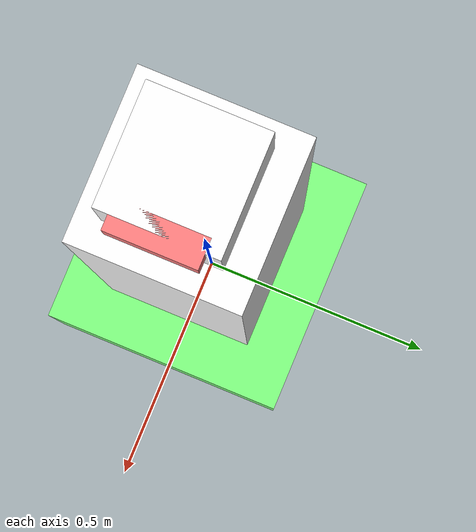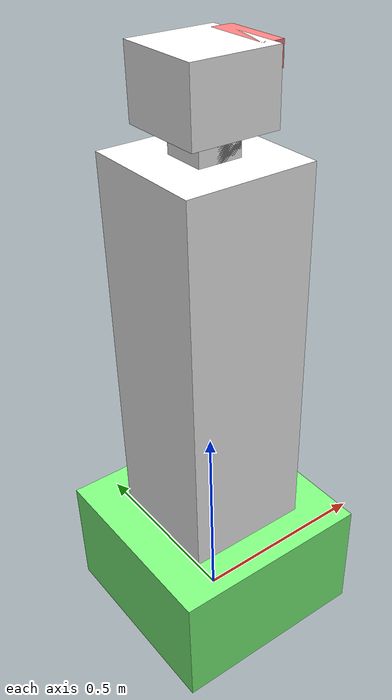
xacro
<?xml version="1.0"?>
<robot name="indy" xmlns:xacro="http://ros.org/wiki/xacro">
  <xacro:arg name="robot_name" default="indy" />
  <xacro:property name="rover_size" value="0.5 0.5 0.3" /> <!-- 適当です -->
  <xacro:property name="body_size" value="0.3 0.3 0.9" /> <!-- 適当です -->
  <xacro:property name="neck_size" value="0.1 0.1 0.1" /> <!-- 適当です -->
  <xacro:property name="upper_neck_size" value="0.1 0.1 0.15" /> <!-- 適当です -->
  <xacro:property name="head_size" value="0.2 0.2 0.15" /> <!-- 適当です -->
  <xacro:property name="camera_size" value="0.05 0.15 0.05" /> <!-- 適当です -->

  <link name="$(arg robot_name)_base_footprint" />
  <joint name="$(arg robot_name)_base_joint" type="fixed">
    <origin xyz="0 0 0.15" rpy="0 0 0" />
    <parent link="$(arg robot_name)_base_footprint" />
    <child link="$(arg robot_name)_base_link" />
  </joint>

  <link name="$(arg robot_name)_base_link">
    <visual>
      <geometry>
        <box size="${rover_size}" />
      </geometry>
      <material name="green">
        <color rgba="0.5 1.0 0.5 1.0" />
      </material>
    </visual>

    <collision>
      <geometry>
        <box size="${rover_size}" />
      </geometry>
    </collision>
  </link>

  <joint name="$(arg robot_name)_body_joint" type="fixed">
    <origin xyz="0 0 0.6" rpy="0 0 0" />
    <parent link="$(arg robot_name)_base_link" />
    <child link="$(arg robot_name)_body_link" />
  </joint>

  <link name="$(arg robot_name)_body_link">
    <visual>
      <geometry>
        <box size="${body_size}" />
      </geometry>
      <material name="white">
        <color rgba="1.0 1.0 1.0 1.0" />
      </material>
    </visual>

    <collision>
      <geometry>
        <box size="${body_size}" />
      </geometry>
    </collision>
  </link>

  <joint name="$(arg robot_name)_microphone_array_base_joint" type="fixed">
    <origin xyz="0 0 0" rpy="0 0 0" />
    <parent link="$(arg robot_name)_body_link" />
    <child link="$(arg robot_name)_microphone_array_base" />
  </joint>

  <link name="$(arg robot_name)_microphone_array_base" />

  <joint name="$(arg robot_name)_body_pitch_joint" type="revolute">
    <axis xyz="0 1 0" />
    <limit effort="1000.0" lower="-0.5" upper="1.0" velocity="1.0" />
    <origin xyz="0 0 0.45" rpy="0 0 0" />  <!-- this rotation should be set in neck joint -->
    <parent link="$(arg robot_name)_body_link" />
    <child link="$(arg robot_name)_neck_link" />
  </joint>

  <link name="$(arg robot_name)_neck_link">
    <visual>
      <geometry>
        <box size="${neck_size}" />
      </geometry>
      <material name="white">
        <color rgba="1.0 1.0 1.0 1.0" />
      </material>
    </visual>

    <collision>
      <geometry>
        <box size="${neck_size}" />
      </geometry>
    </collision>
  </link>

  <joint name="$(arg robot_name)_neck_yaw_joint" type="revolute">
    <axis xyz="0 0 1" />
    <limit effort="1000.0" lower="-1.57" upper="1.57" velocity="1.0" />
    <origin xyz="0 0 0.05" rpy="0 0 0" />  <!-- this rotation should be set in neck joint -->
    <parent link="$(arg robot_name)_neck_link" />
    <child link="$(arg robot_name)_upper_neck_link" />
  </joint>

  <link name="$(arg robot_name)_upper_neck_link">
    <visual>
      <geometry>
        <box size="${upper_neck_size}" />
      </geometry>
      <material name="white">
        <color rgba="1.0 1.0 1.0 1.0" />
      </material>
    </visual>

    <collision>
      <geometry>
        <box size="${upper_neck_size}" />
      </geometry>
    </collision>
  </link>

  <joint name="$(arg robot_name)_neck_pitch_joint" type="revolute">
    <axis xyz="0 1 0" />
    <limit effort="1000.0" lower="-1.0" upper="1.0" velocity="1.0" />
    <origin xyz="0 0 0.08" rpy="0 0 0" />  <!-- this rotation should be set in neck joint -->
    <parent link="$(arg robot_name)_upper_neck_link" />
    <child link="$(arg robot_name)_head_link" />
  </joint>

  <link name="$(arg robot_name)_head_link">
    <visual>
      <geometry>
        <box size="${head_size}" />
      </geometry>
      <material name="white">
        <color rgba="1.0 1.0 1.0 1.0" />
      </material>
    </visual>

    <collision>
      <geometry>
        <box size="${head_size}" />
      </geometry>
    </collision>
  </link>

  <joint name="$(arg robot_name)_camera_joint" type="fixed">
    <origin xyz="0.1 0 0.05" rpy="0 0 0" />
    <parent link="$(arg robot_name)_head_link" />
    <child link="$(arg robot_name)_camera_link" />
  </joint>

  <link name="$(arg robot_name)_camera_link">
    <visual>
      <geometry>
        <box size="${camera_size}" />
      </geometry>
      <material name="red">
        <color rgba="1.0 0.5 0.5 1.0" />
      </material>
    </visual>

    <collision>
      <geometry>
        <box size="${camera_size}" />
      </geometry>
    </collision>
  </link>
</robot>
